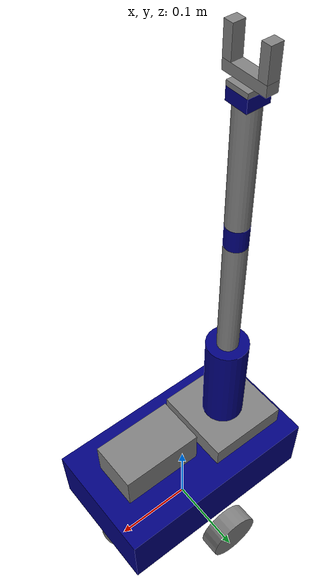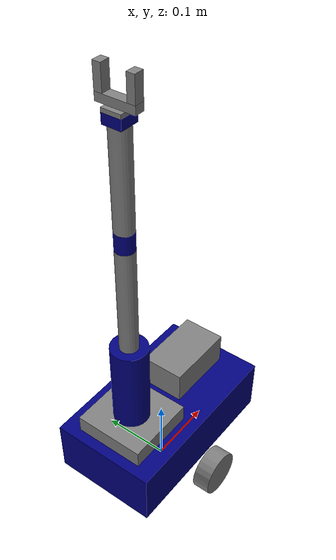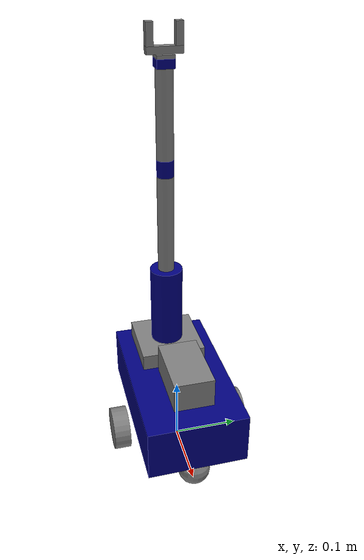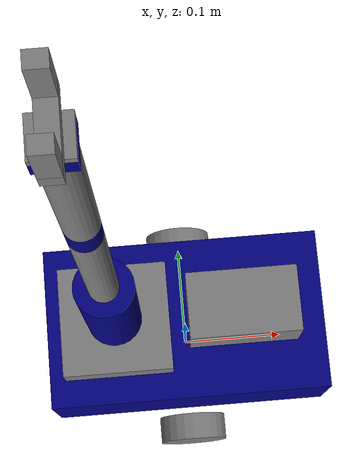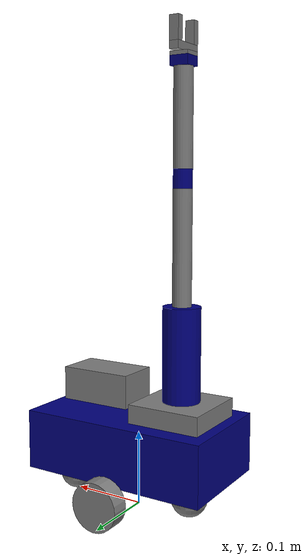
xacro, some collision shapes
<?xml version="1.0"?>
<robot name="my_robot" xmlns:xacro="http://www.ros.org/wiki/xacro">

    <xacro:include filename="common_properties.xacro"/>
    <xacro:include filename="car_base.xacro"/>
    <xacro:include filename="car_base.ros2_control.xacro"/>
    <xacro:include filename="lidar.xacro"/>
    <xacro:include filename="arm.xacro"/>
    <xacro:include filename="gripper.xacro"/>
    <xacro:include filename="car_arm.ros2_control.xacro"/>

    <joint name="base_lidar_joint" type="fixed">
        <parent link="base_link"/>
        <child link="lidar_link"/>
        <origin xyz="${base_length / 5.0} 0 ${base_height + (lidar_height / 1.5)}" rpy="0 0 0"/>
    </joint>

    <joint name="base_arm_joint" type="fixed">
        <parent link="base_link" />
        <child link="arm_base_link" />
        <origin xyz="${-base_length / 4.0} 0 ${base_height}" rpy="0 0 0" />
    </joint>

    <joint name="arm_hand_gripper_joint" type="fixed">
        <parent link="tool0" />
        <child link="gripper_base_link" />
        <origin xyz="0 0 0" rpy="0 0 0" />
    </joint>

</robot>

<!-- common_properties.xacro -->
<robot xmlns:xacro="http://www.ros.org/wiki/xacro">

    <material name="blue">
        <color rgba="0 0 0.5 1" />
    </material>

    <material name="grey">
        <color rgba="0.5 0.5 0.5 1" />
    </material>

    <material name="orange">
        <color rgba="1.0 0.5 0 1" />
    </material>

    <material name="yellow">
        <color rgba="1.0 1.0 0 1" />
    </material>

    <xacro:macro name="box_inertia" params="m x y z o_xyz o_rpy">
        <inertial>
            <origin xyz="${o_xyz}" rpy="${o_rpy}"/>
            <mass value="${m}"/>
            <inertia ixx="${(m/12) * (y**2 + z**2)}" ixy="0" ixz="0"
                     iyy="${(m/12) * (x**2 + z**2)}" iyz="0"
                     izz="${(m/12) * (x**2 + y**2)}"/>
        </inertial>
    </xacro:macro>

    <xacro:macro name="cylinder_inertia" params="m r l o_xyz o_rpy">
        <inertial>
            <origin xyz="${o_xyz}" rpy="${o_rpy}"/>
            <mass value="${m}"/>
            <inertia ixx="${(m/12) * (3*r**2 + l**2)}" ixy="0" ixz="0"
                     iyy="${(m/12) * (3*r**2 + l**2)}" iyz="0"
                     izz="${(m/2) * (r**2)}"/>
        </inertial>
    </xacro:macro>

    <xacro:macro name="sphere_inertia" params="m r o_xyz o_rpy">
        <inertial>
            <origin xyz="${o_xyz}" rpy="${o_rpy}"/>
            <mass value="${m}"/>
            <inertia ixx="${(m*(2/5)) * (r**2)}" ixy="0" ixz="0"
                     iyy="${(m*(2/5)) * (r**2)}" iyz="0"
                     izz="${(m*(2/5)) * (r**2)}"/>
        </inertial>
    </xacro:macro>

</robot>

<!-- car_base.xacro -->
<robot xmlns:xacro="http://ros.org/wiki/xacro">

    <xacro:property name="base_length" value="0.26" />
    <xacro:property name="base_width" value="0.15" />
    <xacro:property name="base_height" value="0.08" />

    <xacro:property name="wheel_length" value="0.025" />
    <xacro:property name="wheel_radius" value="0.0325" />

    <xacro:property name="caster_wheel_radius" value="${(wheel_radius * 1.5) / 2}" />

    <link name="base_footprint" />

    <link name="base_link">
        <visual>
            <geometry>
                <box size="${base_length} ${base_width} ${base_height}" />
            </geometry>
            <origin xyz="0 0 ${base_height / 2.0}" rpy="0 0 0" />
            <material name="blue" />
        </visual>
        <collision>
            <geometry>
                <box size="${base_length} ${base_width} ${base_height}" />
            </geometry>
            <origin xyz="0 0 ${base_height / 2.0}" rpy="0 0 0" />
        </collision>
        <xacro:box_inertia m="0.4" x="${base_length}" y="${base_width}" z="${base_height}"
                            o_xyz="0 0 ${base_height / 2.0}" o_rpy="0 0 0" />
    </link>

    <xacro:macro name="wheel_link" params="prefix">
        <link name="${prefix}_wheel_link">
            <visual>
                <geometry>
                    <cylinder radius="${wheel_radius}" length="${wheel_length}" />
                </geometry>
                <origin xyz="0 0 0" rpy="${pi / 2.0} 0 0" />
                <material name="grey" />
            </visual>
            <collision>
                <geometry>
                    <sphere radius="${wheel_radius}"/>
                </geometry>
                <origin xyz="0 0 0" rpy="0 0 0" />
            </collision>
            <xacro:cylinder_inertia m="0.055" r="${wheel_radius}" l="${wheel_length}" o_xyz="0 0 0" o_rpy="${pi / 2.0} 0 0" />
        </link>
    </xacro:macro>

    <xacro:wheel_link prefix="left" />
    <xacro:wheel_link prefix="right" />

    <xacro:macro name="caster_wheel_link" params="prefix">
        <link name="${prefix}_caster_wheel_link">
            <visual>
                <geometry>
                    <sphere radius="${caster_wheel_radius}"/>
                </geometry>
                <origin xyz="0 0 ${-caster_wheel_radius}" rpy="0 0 0"/>
                <material name="grey" />
            </visual>
            <collision>
                <geometry>
                    <sphere radius="${caster_wheel_radius}"/>
                </geometry>
                <origin xyz="0 0 ${-caster_wheel_radius}" rpy="0 0 0"/>
            </collision>
            <xacro:sphere_inertia m="0.037" r="${caster_wheel_radius}" o_xyz="0 0 ${-caster_wheel_radius}" o_rpy="0 0 0" />
        </link>
    </xacro:macro>

    <xacro:caster_wheel_link prefix="front" />
    <xacro:caster_wheel_link prefix="back" />

    <joint name="base_joint" type="fixed">
        <parent link="base_footprint"/>
        <child link="base_link"/>
        <origin xyz="0 0 ${wheel_radius * 1.5}" rpy="0 0 0"/>
    </joint>

    <joint name="base_left_wheel_joint" type="continuous">
        <parent link="base_link" />
        <child link="left_wheel_link" />
        <origin xyz="0 ${((base_width + wheel_length) / 2.0 ) + 0.0075 } ${-(wheel_radius / 2)}" rpy="0 0 0" />
        <axis xyz="0 1 0" />
        <limit effort="100" velocity="100" />
    </joint>

    <joint name="base_right_wheel_joint" type="continuous">
        <parent link="base_link" />
        <child link="right_wheel_link" />
        <origin xyz="0 ${-(((base_width + wheel_length) / 2.0 ) + 0.0075 )} ${-(wheel_radius / 2)}" rpy="0 0 0" />
        <axis xyz="0 1 0" />
        <limit effort="100" velocity="100" />
    </joint>

    <joint name="base_front_caster_wheel_joint" type="fixed">
        <parent link="base_link"/>
        <child link="front_caster_wheel_link"/>
        <origin xyz="${(base_length / 2.0) * 0.8} 0 0" rpy="0 0 0"/>
    </joint>

    <joint name="base_back_caster_wheel_joint" type="fixed">
        <parent link="base_link"/>
        <child link="back_caster_wheel_link"/>
        <origin xyz="${-(base_length / 2.0) * 0.6} 0 0" rpy="0 0 0"/>
    </joint>

</robot>

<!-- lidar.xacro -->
<robot xmlns:xacro="http://www.ros.org/wiki/xacro">

    <xacro:property name="lidar_length" value="0.1" />
    <xacro:property name="lidar_width" value="0.06" />
    <xacro:property name="lidar_height" value="0.045" />

    <link name="lidar_link">
        <visual>
            <geometry>
                <mesh filename="package://car_robot_description/meshes/lds.stl" scale="0.001 0.001 0.001"/>
            </geometry>
            <origin xyz="0 0 ${lidar_height / 16}" rpy="0 0 0" />
            <material name="grey" />
        </visual>
        <collision>
            <geometry>
                <box size="${lidar_length} ${lidar_width} ${lidar_height}"/>
            </geometry>
            <origin xyz="0 0 ${lidar_height / 16}" rpy="0 0 0" />
        </collision>
        <xacro:box_inertia m="0.13" x="${lidar_length}" y="${lidar_width}" z="${lidar_height}"
                            o_xyz="0 0 0" o_rpy="0 0 0" />
    </link>

    <gazebo reference="lidar_link">
        <sensor name="lidar" type="gpu_lidar">

            <!-- Force Gazebo to publish the clean URDF frame name -->
            <gz_frame_id>lidar_link</gz_frame_id>

            <topic>/scan</topic>
            <update_rate>3</update_rate>
            <always_on>true</always_on>
            <visualize>true</visualize>
            <lidar>
                <scan>
                    <horizontal>
                        <samples>360</samples>
                        <resolution>1</resolution>
                        <min_angle>-3.14159</min_angle>
                        <max_angle>3.14159</max_angle>
                    </horizontal>
                </scan>
                <range>
                    <min>0.1</min>
                    <max>8.0</max>
                    <resolution>0.01</resolution>
                </range>
            </lidar>
        </sensor>
    </gazebo>
</robot>

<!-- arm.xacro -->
<robot xmlns:xacro="http://www.ros.org/wiki/xacro"> # name="arm"

    <xacro:property name="arm_base_length" value="0.1" />
    <xacro:property name="arm_base_width" value="0.1" />
    <xacro:property name="arm_base_height" value="0.025" />

    <xacro:property name="arm_shoulder_radius" value="0.0250" />
    <xacro:property name="arm_shoulder_length" value="0.125" />

    <xacro:property name="arm_upper_arm_radius" value="0.0125" />
    <xacro:property name="arm_upper_arm_length" value="0.15" />

    <xacro:property name="arm_elbow_radius" value="0.0125" />
    <xacro:property name="arm_elbow_length" value="0.025" />

    <xacro:property name="arm_forearm_radius" value="0.0125" />
    <xacro:property name="arm_forearm_length" value="0.125" />

    <xacro:property name="arm_wrist_length" value="0.025" />
    <xacro:property name="arm_wrist_width" value="0.025" />
    <xacro:property name="arm_wrist_height" value="0.0125" />

    <xacro:property name="arm_hand_length" value="0.025" />
    <xacro:property name="arm_hand_width" value="0.025" />
    <xacro:property name="arm_hand_height" value="0.005" />

    <link name="arm_base_link">
        <visual>
            <geometry>
                <box size="${arm_base_length} ${arm_base_width} ${arm_base_height}" />
            </geometry>
            <origin xyz="0 0 ${arm_base_height / 2.0}" rpy="0 0 0" />
            <material name="grey" />
        </visual>
        <collision>
            <geometry>
                <box size="${arm_base_length} ${arm_base_width} ${arm_base_height}" />
            </geometry>
            <origin xyz="0 0 ${arm_base_height / 2.0}" rpy="0 0 0" />
        </collision>
    </link>

    <link name="arm_shoulder_link">
        <visual>
            <geometry>
                <cylinder radius="${arm_shoulder_radius}" length="${arm_shoulder_length}" />
            </geometry>
            <origin xyz="0 0 ${arm_shoulder_length / 2.0}" rpy="0 0 0" />
            <material name="blue" />
        </visual>
        <collision>
            <geometry>
                <cylinder radius="${arm_shoulder_radius}" length="${arm_shoulder_length}" />
            </geometry>
            <origin xyz="0 0 ${arm_shoulder_length / 2.0}" rpy="0 0 0" />
        </collision>
    </link>

    <link name="arm_upper_arm_link">
        <visual>
            <geometry>
                <cylinder radius="${arm_upper_arm_radius}" length="${arm_upper_arm_length}" />
            </geometry>
            <origin xyz="0 0 ${arm_upper_arm_length / 2.0}" rpy="0 0 0" />
            <material name="grey" />
        </visual>
        <collision>
            <geometry>
                <cylinder radius="${arm_upper_arm_radius}" length="${arm_upper_arm_length}" />
            </geometry>
            <origin xyz="0 0 ${arm_upper_arm_length / 2.0}" rpy="0 0 0" />
        </collision>
    </link>

    <link name="arm_elbow_link">
        <visual>
            <geometry>
                <cylinder radius="${arm_elbow_radius}" length="${arm_elbow_length}" />
            </geometry>
            <origin xyz="0 0 ${arm_elbow_length / 2.0}" rpy="0 0 0" />
            <material name="blue" />
        </visual>
        <collision>
            <geometry>
                <cylinder radius="${arm_elbow_radius}" length="${arm_elbow_length}" />
            </geometry>
            <origin xyz="0 0 ${arm_elbow_length / 2.0}" rpy="0 0 0" />
        </collision>
    </link>

    <link name="arm_forearm_link">
        <visual>
            <geometry>
                <cylinder radius="${arm_forearm_radius}" length="${arm_forearm_length}" />
            </geometry>
            <origin xyz="0 0 ${arm_forearm_length / 2.0}" rpy="0 0 0" />
            <material name="grey" />
        </visual>
        <collision>
            <geometry>
                <cylinder radius="${arm_forearm_radius}" length="${arm_forearm_length}" />
            </geometry>
            <origin xyz="0 0 ${arm_forearm_length / 2.0}" rpy="0 0 0" />
        </collision>
    </link>

    <link name="arm_wrist_link">
        <visual>
            <geometry>
                <box size="${arm_wrist_length} ${arm_wrist_width} ${arm_wrist_height}"/>
            </geometry>
            <origin xyz="0 0 ${arm_wrist_height / 2.0}" rpy="0 0 0" />
            <material name="blue" />
        </visual>
        <collision>
            <geometry>
                <box size="${arm_wrist_length} ${arm_wrist_width} ${arm_wrist_height}"/>
            </geometry>
            <origin xyz="0 0 ${arm_wrist_height / 2.0}" rpy="0 0 0" />
        </collision>
    </link>

    <link name="arm_hand_link">
        <visual>
            <geometry>
                <box size="${arm_hand_length} ${arm_hand_width} ${arm_hand_height}"/>
            </geometry>
            <origin xyz="0 0 ${arm_hand_height / 2.0}" rpy="0 0 0" />
            <material name="grey" />
        </visual>
        <collision>
            <geometry>
                <box size="${arm_hand_length} ${arm_hand_width} ${arm_hand_height}"/>
            </geometry>
            <origin xyz="0 0 ${arm_hand_height / 2.0}" rpy="0 0 0" />
        </collision>
    </link>

    <link name="tool0" />

    <joint name="arm_joint1" type="revolute">
        <parent link="arm_base_link" />
        <child link="arm_shoulder_link" />
        <origin xyz="0 0 ${arm_base_height}" rpy="0 0 0" />
        <axis xyz="0 0 1" />
        <limit lower="${-pi}" upper="${pi}" effort="100" velocity="100" />
        <dynamics friction="0.05" damping="0.1" />
    </joint>

    <joint name="arm_joint2" type="revolute">
        <parent link="arm_shoulder_link" />
        <child link="arm_upper_arm_link" />
        <origin xyz="0 0 ${arm_shoulder_length}" rpy="0 0 0" />
        <axis xyz="0 1 0" />
        <limit lower="0" upper="2.5" effort="100" velocity="100" />
        <dynamics friction="0.05" damping="0.1" />
    </joint>

    <joint name="arm_joint3" type="revolute">
        <parent link="arm_upper_arm_link" />
        <child link="arm_elbow_link" />
        <origin xyz="0 0 ${arm_upper_arm_length}" rpy="0 0 0" />
        <axis xyz="0 1 0" />
        <limit lower="0" upper="2.5" effort="100" velocity="100" />
        <dynamics friction="0.05" damping="0.1" />
    </joint>

    <joint name="arm_joint4" type="revolute">
        <parent link="arm_elbow_link" />
        <child link="arm_forearm_link" />
        <origin xyz="0 0 ${arm_elbow_length}" rpy="0 0 0" />
        <axis xyz="0 0 1" />
        <limit lower="${-pi}" upper="${pi}" effort="100" velocity="100" />
        <dynamics friction="0.05" damping="0.1" />
    </joint>

    <joint name="arm_joint5" type="revolute">
        <parent link="arm_forearm_link" />
        <child link="arm_wrist_link" />
        <origin xyz="0 0 ${arm_forearm_length}" rpy="0 0 0" />
        <axis xyz="0 1 0" />
        <limit lower="${-pi/2}" upper="${pi/2}" effort="100" velocity="100" />
        <dynamics friction="0.05" damping="0.1" />
    </joint>

    <joint name="arm_joint6" type="continuous">
        <parent link="arm_wrist_link" />
        <child link="arm_hand_link" />
        <origin xyz="0 0 ${arm_wrist_height}" rpy="0 0 0" />
        <axis xyz="0 0 1" />
        <dynamics friction="0.05" damping="0.1" />
    </joint>

    <joint name="hand_tool_joint" type="fixed">
        <parent link="arm_hand_link" />
        <child link="tool0" />
        <origin xyz="0 0 ${arm_hand_height}" rpy="0 0 0" />
    </joint>

</robot>

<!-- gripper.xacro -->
<robot xmlns:xacro="http://www.ros.org/wiki/xacro">

    <xacro:property name="gripper_base_length" value="0.0125" />
    <xacro:property name="gripper_base_width" value="0.05" />
    <xacro:property name="gripper_base_height" value="0.01" />

    <xacro:property name="gripper_left_finger_length" value="0.0125" />
    <xacro:property name="gripper_left_finger_width" value="0.01" />
    <xacro:property name="gripper_left_finger_height" value="0.03" />

    <xacro:property name="gripper_right_finger_length" value="0.0125" />
    <xacro:property name="gripper_right_finger_width" value="0.01" />
    <xacro:property name="gripper_right_finger_height" value="0.03" />

    <link name="gripper_base_link">
        <visual>
            <geometry>
                <box size="${gripper_base_length} ${gripper_base_width} ${gripper_base_height}"/>
            </geometry>
            <origin xyz="0 0 ${gripper_base_height / 2}" rpy="0 0 0" />
            <material name="grey" />
        </visual>
        <collision>
            <geometry>
                <box size="${gripper_base_length} ${gripper_base_width} ${gripper_base_height}"/>
            </geometry>
            <origin xyz="0 0 ${gripper_base_height / 2}" rpy="0 0 0" />
        </collision>
    </link>

    <link name="gripper_left_finger">
        <visual>
            <geometry>
                <box size="${gripper_left_finger_length} ${gripper_left_finger_width} ${gripper_left_finger_height}"/>
            </geometry>
            <origin xyz="0 0 ${gripper_left_finger_height / 2}" rpy="0 0 0" />
            <material name="grey" />
        </visual>
        <collision>
            <geometry>
                <box size="${gripper_left_finger_length} ${gripper_left_finger_width} ${gripper_left_finger_height}"/>
            </geometry>
            <origin xyz="0 0 ${gripper_left_finger_height / 2}" rpy="0 0 0" />
        </collision>
    </link>

    <link name="gripper_right_finger">
        <visual>
            <geometry>
                <box size="${gripper_right_finger_length} ${gripper_right_finger_width} ${gripper_right_finger_height}"/>
            </geometry>
            <origin xyz="0 0 ${gripper_left_finger_height / 2}" rpy="0 0 0" />
            <material name="grey" />
        </visual>
        <collision>
            <geometry>
                <box size="${gripper_right_finger_length} ${gripper_right_finger_width} ${gripper_right_finger_height}"/>
            </geometry>
            <origin xyz="0 0 ${gripper_left_finger_height / 2}" rpy="0 0 0" />
        </collision>
    </link>

    <joint name="gripper_base_left_finger_joint" type="prismatic">
        <parent link="gripper_base_link"/>
        <child link="gripper_left_finger"/>
        <origin xyz="0 ${(gripper_base_width / 2) - (gripper_left_finger_width / 2)} ${gripper_base_height}" rpy="0 0 0"/>
        <axis xyz="0 1 0"/>
        <limit lower="${-((gripper_base_width / 2) - gripper_left_finger_width)}" upper="0.0" effort="1000.0" velocity="1.0"/>
        <mimic joint="gripper_base_right_finger_joint" multiplier="-1.0" offset="0.0"/>
    </joint>

    <joint name="gripper_base_right_finger_joint" type="prismatic">
        <parent link="gripper_base_link"/>
        <child link="gripper_right_finger"/>
        <origin xyz="0 ${-(gripper_base_width / 2) + (gripper_right_finger_width / 2)} ${gripper_base_height}" rpy="0 0 0"/>
        <axis xyz="0 1 0"/>
        <limit lower="0.0" upper="${(gripper_base_width / 2) - gripper_left_finger_width}" effort="1000.0" velocity="1.0"/>
    </joint>

</robot>
